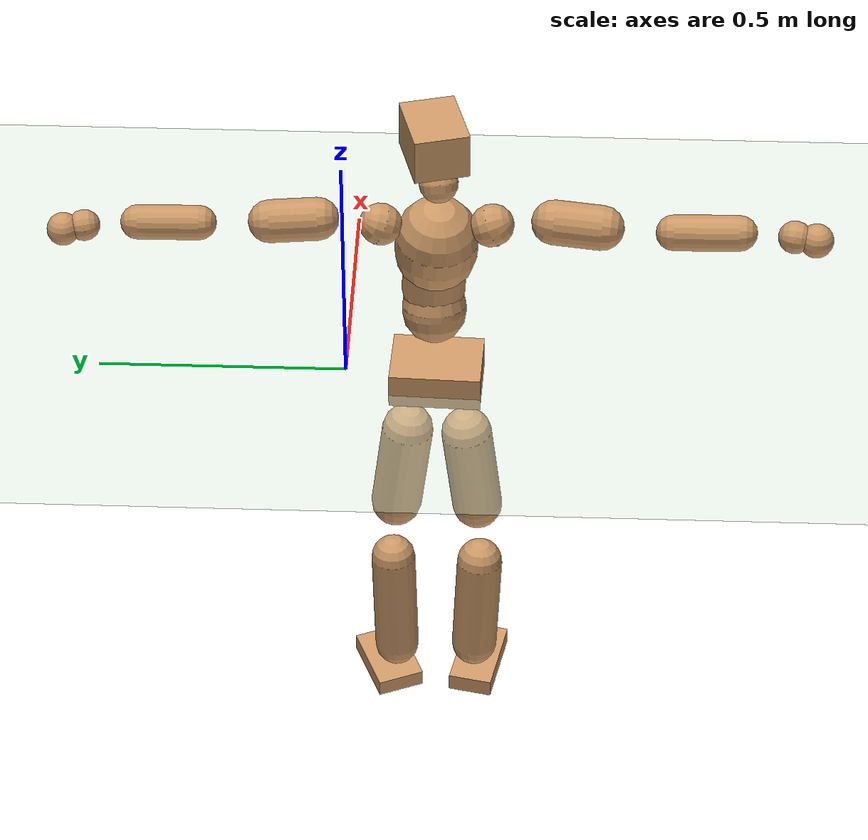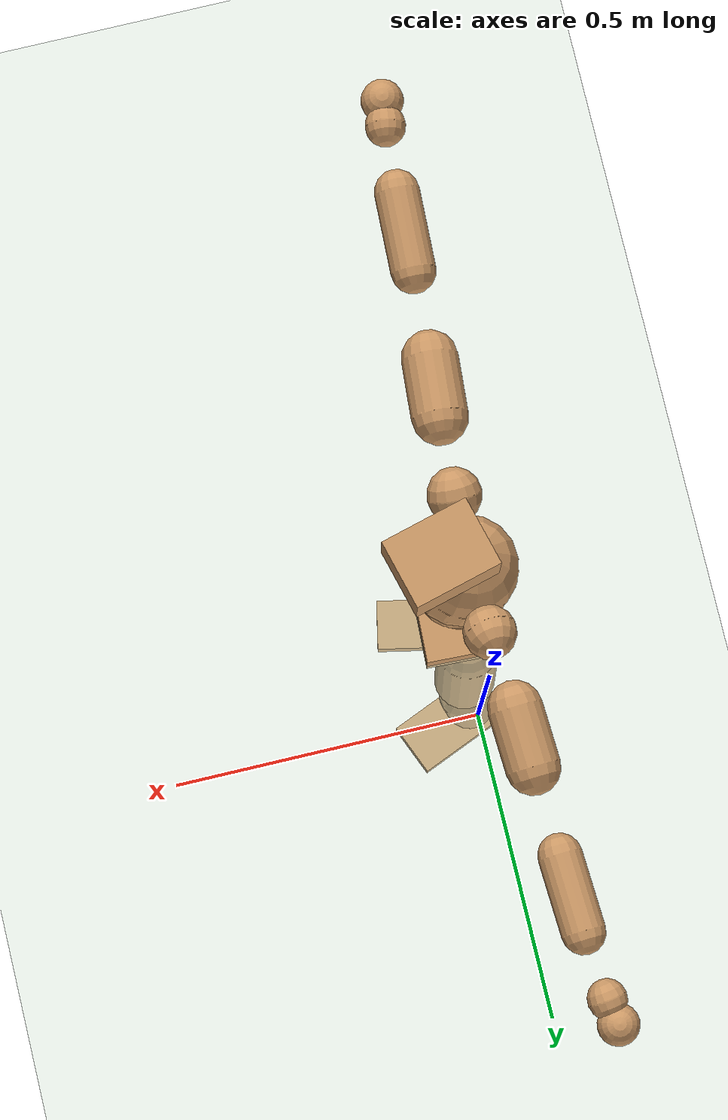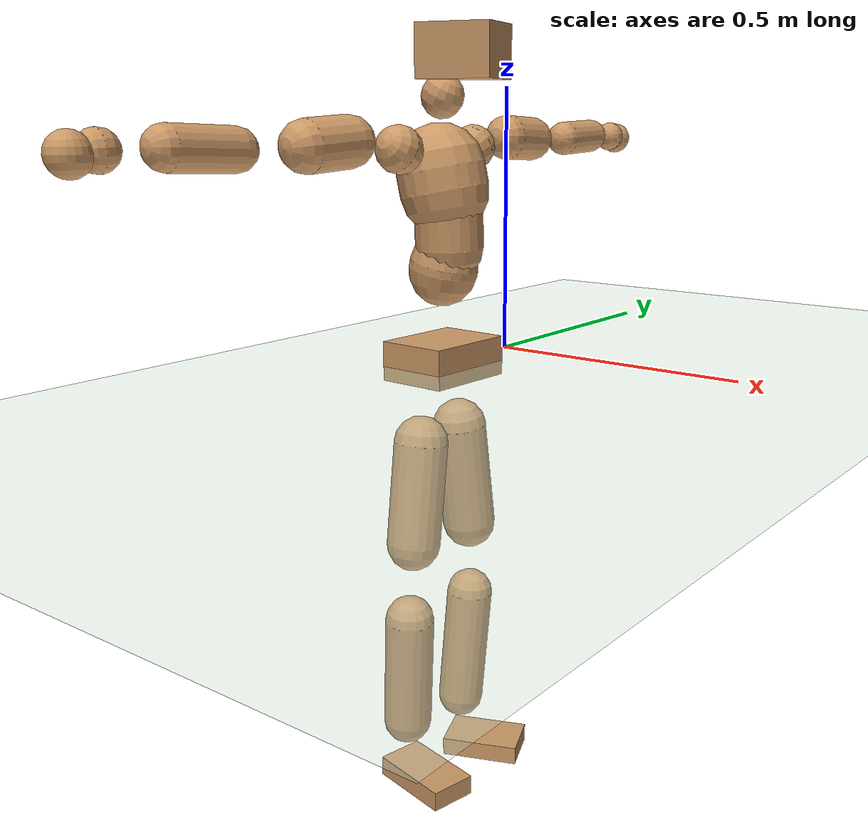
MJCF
<mujoco model="humanoid">
  <compiler coordinate="local" angle="radian"/>
  <default>
    <joint damping="0.0" armature="0.01" stiffness="0.0" limited="true"/>
    <geom conaffinity="1" condim="3" contype="7" margin="0.001" rgba="0.8 0.6 .4 1"/>
  </default>
  <asset>
    <texture type="skybox" builtin="gradient" rgb1=".4 .5 .6" rgb2="0 0 0" width="100" height="100"/>
    <texture builtin="flat" height="1278" mark="cross" markrgb="1 1 1" name="texgeom" random="0.01" rgb1="0.8 0.6 0.4" rgb2="0.8 0.6 0.4" type="cube" width="127"/>
    <texture builtin="checker" height="100" name="texplane" rgb1="0 0 0" rgb2="0.8 0.8 0.8" type="2d" width="100"/>
    <material name="MatPlane" reflectance="0.5" shininess="1" specular="1" texrepeat="60 60" texture="texplane"/>
    <material name="geom" texture="texgeom" texuniform="true"/>
  </asset>
  <worldbody>
    <light cutoff="100" diffuse="1 1 1" dir="-0 0 -1.3" directional="true" exponent="1" pos="0 0 1.3" specular=".1 .1 .1"/>
    <geom conaffinity="1" condim="3" name="floor" pos="0 0 0" rgba="0.8 0.9 0.8 1" size="100 100 .2" type="plane" material="MatPlane"/>
    <body name="Pelvis" pos="-0 -0.185 0.016">
      <freejoint name="Pelvis"/>
      <geom type="box" contype="1" conaffinity="1" density="5359.374324" pos="-0.0102 0.0004 -0.0076" size="0.0683 0.0918 0.0369" quat="0.9998 0.0000 0.0000 -0.0201" name="Pelvis"/>
      <body name="L_Hip" pos="-0.0202 0.0496 -0.0716">
        <joint name="L_Hip_x" type="hinge" pos="0 0 0" axis="1 0 0" stiffness="1600" damping="160" armature="0.02" range="-180.0000 180.0000"/>
        <joint name="L_Hip_y" type="hinge" pos="0 0 0" axis="0 1 0" stiffness="1600" damping="160" armature="0.02" range="-180.0000 180.0000"/>
        <joint name="L_Hip_z" type="hinge" pos="0 0 0" axis="0 0 1" stiffness="1600" damping="160" armature="0.02" range="-180.0000 180.0000"/>
        <geom type="capsule" contype="1" conaffinity="1" density="2040.816327" size="0.0522" fromto="0.0022 0.0098 -0.0815 0.0078 0.0346 -0.2886" name="L_Hip"/>
        <body name="L_Knee" pos="0.01 0.0444 -0.3701">
          <joint name="L_Knee_x" type="hinge" pos="0 0 0" axis="1 0 0" stiffness="1600" damping="160" armature="0.02" range="-180.0000 180.0000"/>
          <joint name="L_Knee_y" type="hinge" pos="0 0 0" axis="0 1 0" stiffness="1600" damping="160" armature="0.02" range="-180.0000 180.0000"/>
          <joint name="L_Knee_z" type="hinge" pos="0 0 0" axis="0 0 1" stiffness="1600" damping="160" armature="0.02" range="-180.0000 180.0000"/>
          <geom type="capsule" contype="1" conaffinity="1" density="1234.567901" size="0.0461" fromto="-0.0058 -0.0022 -0.0758 -0.0241 -0.0093 -0.3159" name="L_Knee"/>
          <body name="L_Ankle" pos="-0.0299 -0.0115 -0.3918">
            <joint name="L_Ankle_x" type="hinge" pos="0 0 0" axis="1 0 0" stiffness="1600" damping="160" armature="0.02" range="-180.0000 180.0000"/>
            <joint name="L_Ankle_y" type="hinge" pos="0 0 0" axis="0 1 0" stiffness="1600" damping="160" armature="0.02" range="-180.0000 180.0000"/>
            <joint name="L_Ankle_z" type="hinge" pos="0 0 0" axis="0 0 1" stiffness="1600" damping="160" armature="0.02" range="-180.0000 180.0000"/>
            <geom type="box" contype="1" conaffinity="1" density="999.999984" pos="0.0548 0.0227 -0.0275" size="0.0778 0.0499 0.0181" quat="0.9808 0.0000 0.0000 0.1952" name="L_Ankle"/>
            <body name="L_Toe" pos="0.1096 0.0454 -0.0549">
              <joint name="L_Toe_x" type="hinge" pos="0 0 0" axis="1 0 0" stiffness="1000" damping="100" armature="0.02" range="-180.0000 180.0000"/>
              <joint name="L_Toe_y" type="hinge" pos="0 0 0" axis="0 1 0" stiffness="1000" damping="100" armature="0.02" range="-180.0000 180.0000"/>
              <joint name="L_Toe_z" type="hinge" pos="0 0 0" axis="0 0 1" stiffness="1000" damping="100" armature="0.02" range="-180.0000 180.0000"/>
              <geom type="box" contype="1" conaffinity="1" density="7356349.123678" pos="0.0000 0.0000 0.0282" size="0.001 0.0024 0.0009" quat="0.9799 0.0000 0.0000 0.1996" name="L_Toe"/>
            </body>
          </body>
        </body>
      </body>
      <body name="R_Hip" pos="-0.0161 -0.0511 -0.0802">
        <joint name="R_Hip_x" type="hinge" pos="0 0 0" axis="1 0 0" stiffness="1600" damping="160" armature="0.02" range="-180.0000 180.0000"/>
        <joint name="R_Hip_y" type="hinge" pos="0 0 0" axis="0 1 0" stiffness="1600" damping="160" armature="0.02" range="-180.0000 180.0000"/>
        <joint name="R_Hip_z" type="hinge" pos="0 0 0" axis="0 0 1" stiffness="1600" damping="160" armature="0.02" range="-180.0000 180.0000"/>
        <geom type="capsule" contype="1" conaffinity="1" density="2040.816327" size="0.0515" fromto="-0.0006 -0.0098 -0.0809 -0.0019 -0.0338 -0.2776" name="R_Hip"/>
        <body name="R_Knee" pos="-0.0025 -0.0436 -0.3584">
          <joint name="R_Knee_x" type="hinge" pos="0 0 0" axis="1 0 0" stiffness="1600" damping="160" armature="0.02" range="-180.0000 180.0000"/>
          <joint name="R_Knee_y" type="hinge" pos="0 0 0" axis="0 1 0" stiffness="1600" damping="160" armature="0.02" range="-180.0000 180.0000"/>
          <joint name="R_Knee_z" type="hinge" pos="0 0 0" axis="0 0 1" stiffness="1600" damping="160" armature="0.02" range="-180.0000 180.0000"/>
          <geom type="capsule" contype="1" conaffinity="1" density="1234.567901" size="0.0475" fromto="-0.0058 0.0032 -0.0772 -0.0229 0.0125 -0.3042" name="R_Knee"/>
          <body name="R_Ankle" pos="-0.0287 0.0157 -0.3814">
            <joint name="R_Ankle_x" type="hinge" pos="0 0 0" axis="1 0 0" stiffness="1600" damping="160" armature="0.02" range="-180.0000 180.0000"/>
            <joint name="R_Ankle_y" type="hinge" pos="0 0 0" axis="0 1 0" stiffness="1600" damping="160" armature="0.02" range="-180.0000 180.0000"/>
            <joint name="R_Ankle_z" type="hinge" pos="0 0 0" axis="0 0 1" stiffness="1600" damping="160" armature="0.02" range="-180.0000 180.0000"/>
            <geom type="box" contype="1" conaffinity="1" density="1000.000022" pos="0.0596 -0.0122 -0.0281" size="0.0849 0.0459 0.0194" quat="0.9949 0.0000 0.0000 -0.1008" name="R_Ankle"/>
            <body name="R_Toe" pos="0.1193 -0.0244 -0.0561">
              <joint name="R_Toe_x" type="hinge" pos="0 0 0" axis="1 0 0" stiffness="1000" damping="100" armature="0.02" range="-180.0000 180.0000"/>
              <joint name="R_Toe_y" type="hinge" pos="0 0 0" axis="0 1 0" stiffness="1000" damping="100" armature="0.02" range="-180.0000 180.0000"/>
              <joint name="R_Toe_z" type="hinge" pos="0 0 0" axis="0 0 1" stiffness="1000" damping="100" armature="0.02" range="-180.0000 180.0000"/>
              <geom type="box" contype="1" conaffinity="1" density="8584885.096933" pos="0.0000 0.0000 0.0295" size="0.0009 0.0023 0.001" quat="0.9958 0.0000 0.0000 -0.0913" name="R_Toe"/>
            </body>
          </body>
        </body>
      </body>
      <body name="Torso" pos="-0.0249 0.004 0.1062">
        <joint name="Torso_x" type="hinge" pos="0 0 0" axis="1 0 0" stiffness="2000" damping="200" armature="0.02" range="-180.0000 180.0000"/>
        <joint name="Torso_y" type="hinge" pos="0 0 0" axis="0 1 0" stiffness="2000" damping="200" armature="0.02" range="-180.0000 180.0000"/>
        <joint name="Torso_z" type="hinge" pos="0 0 0" axis="0 0 1" stiffness="2000" damping="200" armature="0.02" range="-180.0000 180.0000"/>
        <geom type="capsule" contype="1" conaffinity="1" density="2040.816327" size="0.0638" fromto="0.0138 0.0016 0.0623 0.0107 0.0012 0.0481" name="Torso"/>
        <body name="Spine" pos="0.0245 0.0028 0.1104">
          <joint name="Spine_x" type="hinge" pos="0 0 0" axis="1 0 0" stiffness="2000" damping="200" armature="0.02" range="-180.0000 180.0000"/>
          <joint name="Spine_y" type="hinge" pos="0 0 0" axis="0 1 0" stiffness="2000" damping="200" armature="0.02" range="-180.0000 180.0000"/>
          <joint name="Spine_z" type="hinge" pos="0 0 0" axis="0 0 1" stiffness="2000" damping="200" armature="0.02" range="-180.0000 180.0000"/>
          <geom type="capsule" contype="1" conaffinity="1" density="2040.816327" size="0.0627" fromto="0.0005 -0.0030 0.0626 -0.0002 0.0009 -0.0187" name="Spine"/>
          <body name="Chest" pos="0.0004 -0.0021 0.0439">
            <joint name="Chest_x" type="hinge" pos="0 0 0" axis="1 0 0" stiffness="2000" damping="200" armature="0.02" range="-180.0000 180.0000"/>
            <joint name="Chest_y" type="hinge" pos="0 0 0" axis="0 1 0" stiffness="2000" damping="200" armature="0.02" range="-180.0000 180.0000"/>
            <joint name="Chest_z" type="hinge" pos="0 0 0" axis="0 0 1" stiffness="2000" damping="200" armature="0.02" range="-180.0000 180.0000"/>
            <geom type="capsule" contype="1" conaffinity="1" density="2040.816327" size="0.0812" fromto="-0.0145 -0.0049 0.0798 -0.0072 -0.0024 0.0396" name="Chest"/>
            <body name="Neck" pos="-0.026 -0.0113 0.168">
              <joint name="Neck_x" type="hinge" pos="0 0 0" axis="1 0 0" stiffness="1000" damping="100" armature="0.02" range="-180.0000 180.0000"/>
              <joint name="Neck_y" type="hinge" pos="0 0 0" axis="0 1 0" stiffness="1000" damping="100" armature="0.02" range="-180.0000 180.0000"/>
              <joint name="Neck_z" type="hinge" pos="0 0 0" axis="0 0 1" stiffness="1000" damping="100" armature="0.02" range="-180.0000 180.0000"/>
              <geom type="capsule" contype="1" conaffinity="1" density="1000" size="0.0385" fromto="0.0184 0.0042 0.0356 0.0193 0.0044 0.0374" name="Neck"/>
              <body name="Head" pos="0.0378 0.0086 0.073">
                <joint name="Head_x" type="hinge" pos="0 0 0" axis="1 0 0" stiffness="1000" damping="100" armature="0.02" range="-180.0000 180.0000"/>
                <joint name="Head_y" type="hinge" pos="0 0 0" axis="0 1 0" stiffness="1000" damping="100" armature="0.02" range="-180.0000 180.0000"/>
                <joint name="Head_z" type="hinge" pos="0 0 0" axis="0 0 1" stiffness="1000" damping="100" armature="0.02" range="-180.0000 180.0000"/>
                <geom type="box" contype="1" conaffinity="1" density="2250.000021" pos="0.0199 0.0053 0.0375" size="0.069 0.0544 0.0463" quat="0.9915 0.0000 0.0000 0.1299" name="Head"/>
              </body>
            </body>
            <body name="L_Thorax" pos="-0.019 0.055 0.0949">
              <joint name="L_Thorax_x" type="hinge" pos="0 0 0" axis="1 0 0" stiffness="1000" damping="100" armature="0.02" range="-180.0000 180.0000"/>
              <joint name="L_Thorax_y" type="hinge" pos="0 0 0" axis="0 1 0" stiffness="1000" damping="100" armature="0.02" range="-180.0000 180.0000"/>
              <joint name="L_Thorax_z" type="hinge" pos="0 0 0" axis="0 0 1" stiffness="1000" damping="100" armature="0.02" range="-180.0000 180.0000"/>
              <geom type="capsule" contype="1" conaffinity="1" density="1000" size="0.0412" fromto="-0.0042 0.0484 0.0189 -0.0044 0.0502 0.0197" name="L_Thorax"/>
              <body name="L_Shoulder" pos="-0.0086 0.0986 0.0386">
                <joint name="L_Shoulder_x" type="hinge" pos="0 0 0" axis="1 0 0" stiffness="1000" damping="100" armature="0.02" range="-720.0000 720.0000"/>
                <joint name="L_Shoulder_y" type="hinge" pos="0 0 0" axis="0 1 0" stiffness="1000" damping="100" armature="0.02" range="-720.0000 720.0000"/>
                <joint name="L_Shoulder_z" type="hinge" pos="0 0 0" axis="0 0 1" stiffness="1000" damping="100" armature="0.02" range="-720.0000 720.0000"/>
                <geom type="capsule" contype="1" conaffinity="1" density="1000" size="0.0421" fromto="-0.0041 0.0719 -0.0035 -0.0094 0.1646 -0.0079" name="L_Shoulder"/>
                <body name="L_Elbow" pos="-0.0136 0.2366 -0.0114">
                  <joint name="L_Elbow_x" type="hinge" pos="0 0 0" axis="1 0 0" stiffness="1000" damping="100" armature="0.02" range="-720.0000 720.0000"/>
                  <joint name="L_Elbow_y" type="hinge" pos="0 0 0" axis="0 1 0" stiffness="1000" damping="100" armature="0.02" range="-720.0000 720.0000"/>
                  <joint name="L_Elbow_z" type="hinge" pos="0 0 0" axis="0 0 1" stiffness="1000" damping="100" armature="0.02" range="-720.0000 720.0000"/>
                  <geom type="capsule" contype="1" conaffinity="1" density="1000" size="0.0338" fromto="-0.0033 0.0637 0.0019 -0.0096 0.1818 0.0053" name="L_Elbow"/>
                  <body name="L_Wrist" pos="-0.0129 0.2454 0.0072">
                    <joint name="L_Wrist_x" type="hinge" pos="0 0 0" axis="1 0 0" stiffness="600" damping="60" armature="0.02" range="-180.0000 180.0000"/>
                    <joint name="L_Wrist_y" type="hinge" pos="0 0 0" axis="0 1 0" stiffness="600" damping="60" armature="0.02" range="-180.0000 180.0000"/>
                    <joint name="L_Wrist_z" type="hinge" pos="0 0 0" axis="0 0 1" stiffness="600" damping="60" armature="0.02" range="-180.0000 180.0000"/>
                    <geom type="capsule" contype="1" conaffinity="1" density="1000" size="0.0302" fromto="-0.0072 0.0386 -0.0045 -0.0075 0.0406 -0.0047" name="L_Wrist"/>
                    <body name="L_Hand" pos="-0.0147 0.0792 -0.0091">
                      <joint name="L_Hand_x" type="hinge" pos="0 0 0" axis="1 0 0" stiffness="600" damping="60" armature="0.02" range="-180.0000 180.0000"/>
                      <joint name="L_Hand_y" type="hinge" pos="0 0 0" axis="0 1 0" stiffness="600" damping="60" armature="0.02" range="-180.0000 180.0000"/>
                      <joint name="L_Hand_z" type="hinge" pos="0 0 0" axis="0 0 1" stiffness="600" damping="60" armature="0.02" range="-180.0000 180.0000"/>
                      <geom type="sphere" contype="1" conaffinity="1" density="1000" size="0.0321" pos="0.0000 0.0000 0.0000" name="L_Hand"/>
                    </body>
                  </body>
                </body>
              </body>
            </body>
            <body name="R_Thorax" pos="-0.0201 -0.0657 0.0953">
              <joint name="R_Thorax_x" type="hinge" pos="0 0 0" axis="1 0 0" stiffness="1000" damping="100" armature="0.02" range="-180.0000 180.0000"/>
              <joint name="R_Thorax_y" type="hinge" pos="0 0 0" axis="0 1 0" stiffness="1000" damping="100" armature="0.02" range="-180.0000 180.0000"/>
              <joint name="R_Thorax_z" type="hinge" pos="0 0 0" axis="0 0 1" stiffness="1000" damping="100" armature="0.02" range="-180.0000 180.0000"/>
              <geom type="capsule" contype="1" conaffinity="1" density="1000" size="0.0423" fromto="-0.0006 -0.0448 0.0193 -0.0006 -0.0466 0.0201" name="R_Thorax"/>
              <body name="R_Shoulder" pos="-0.0011 -0.0914 0.0395">
                <joint name="R_Shoulder_x" type="hinge" pos="0 0 0" axis="1 0 0" stiffness="1000" damping="100" armature="0.02" range="-720.0000 720.0000"/>
                <joint name="R_Shoulder_y" type="hinge" pos="0 0 0" axis="0 1 0" stiffness="1000" damping="100" armature="0.02" range="-720.0000 720.0000"/>
                <joint name="R_Shoulder_z" type="hinge" pos="0 0 0" axis="0 0 1" stiffness="1000" damping="100" armature="0.02" range="-720.0000 720.0000"/>
                <geom type="capsule" contype="1" conaffinity="1" density="1000" size="0.044" fromto="-0.0054 -0.0737 -0.0045 -0.0122 -0.1661 -0.0102" name="R_Shoulder"/>
                <body name="R_Elbow" pos="-0.0177 -0.2398 -0.0147">
                  <joint name="R_Elbow_x" type="hinge" pos="0 0 0" axis="1 0 0" stiffness="1000" damping="100" armature="0.02" range="-720.0000 720.0000"/>
                  <joint name="R_Elbow_y" type="hinge" pos="0 0 0" axis="0 1 0" stiffness="1000" damping="100" armature="0.02" range="-720.0000 720.0000"/>
                  <joint name="R_Elbow_z" type="hinge" pos="0 0 0" axis="0 0 1" stiffness="1000" damping="100" armature="0.02" range="-720.0000 720.0000"/>
                  <geom type="capsule" contype="1" conaffinity="1" density="1000" size="0.0351" fromto="-0.0022 -0.0650 0.0027 -0.0064 -0.1905 0.0080" name="R_Elbow"/>
                  <body name="R_Wrist" pos="-0.0086 -0.2555 0.0108">
                    <joint name="R_Wrist_x" type="hinge" pos="0 0 0" axis="1 0 0" stiffness="600" damping="60" armature="0.02" range="-180.0000 180.0000"/>
                    <joint name="R_Wrist_y" type="hinge" pos="0 0 0" axis="0 1 0" stiffness="600" damping="60" armature="0.02" range="-180.0000 180.0000"/>
                    <joint name="R_Wrist_z" type="hinge" pos="0 0 0" axis="0 0 1" stiffness="600" damping="60" armature="0.02" range="-180.0000 180.0000"/>
                    <geom type="capsule" contype="1" conaffinity="1" density="1000" size="0.0316" fromto="-0.0047 -0.0402 -0.0038 -0.0050 -0.0422 -0.0039" name="R_Wrist"/>
                    <body name="R_Hand" pos="-0.0097 -0.0824 -0.0077">
                      <joint name="R_Hand_x" type="hinge" pos="0 0 0" axis="1 0 0" stiffness="600" damping="60" armature="0.02" range="-180.0000 180.0000"/>
                      <joint name="R_Hand_y" type="hinge" pos="0 0 0" axis="0 1 0" stiffness="600" damping="60" armature="0.02" range="-180.0000 180.0000"/>
                      <joint name="R_Hand_z" type="hinge" pos="0 0 0" axis="0 0 1" stiffness="600" damping="60" armature="0.02" range="-180.0000 180.0000"/>
                      <geom type="sphere" contype="1" conaffinity="1" density="1000" size="0.0333" pos="0.0000 0.0000 0.0000" name="R_Hand"/>
                    </body>
                  </body>
                </body>
              </body>
            </body>
          </body>
        </body>
      </body>
    </body>
  </worldbody>
  <actuator>
    <motor name="L_Hip_x" joint="L_Hip_x" gear="500"/>
    <motor name="L_Hip_y" joint="L_Hip_y" gear="500"/>
    <motor name="L_Hip_z" joint="L_Hip_z" gear="500"/>
    <motor name="L_Knee_x" joint="L_Knee_x" gear="500"/>
    <motor name="L_Knee_y" joint="L_Knee_y" gear="500"/>
    <motor name="L_Knee_z" joint="L_Knee_z" gear="500"/>
    <motor name="L_Ankle_x" joint="L_Ankle_x" gear="500"/>
    <motor name="L_Ankle_y" joint="L_Ankle_y" gear="500"/>
    <motor name="L_Ankle_z" joint="L_Ankle_z" gear="500"/>
    <motor name="L_Toe_x" joint="L_Toe_x" gear="500"/>
    <motor name="L_Toe_y" joint="L_Toe_y" gear="500"/>
    <motor name="L_Toe_z" joint="L_Toe_z" gear="500"/>
    <motor name="R_Hip_x" joint="R_Hip_x" gear="500"/>
    <motor name="R_Hip_y" joint="R_Hip_y" gear="500"/>
    <motor name="R_Hip_z" joint="R_Hip_z" gear="500"/>
    <motor name="R_Knee_x" joint="R_Knee_x" gear="500"/>
    <motor name="R_Knee_y" joint="R_Knee_y" gear="500"/>
    <motor name="R_Knee_z" joint="R_Knee_z" gear="500"/>
    <motor name="R_Ankle_x" joint="R_Ankle_x" gear="500"/>
    <motor name="R_Ankle_y" joint="R_Ankle_y" gear="500"/>
    <motor name="R_Ankle_z" joint="R_Ankle_z" gear="500"/>
    <motor name="R_Toe_x" joint="R_Toe_x" gear="500"/>
    <motor name="R_Toe_y" joint="R_Toe_y" gear="500"/>
    <motor name="R_Toe_z" joint="R_Toe_z" gear="500"/>
    <motor name="Torso_x" joint="Torso_x" gear="500"/>
    <motor name="Torso_y" joint="Torso_y" gear="500"/>
    <motor name="Torso_z" joint="Torso_z" gear="500"/>
    <motor name="Spine_x" joint="Spine_x" gear="500"/>
    <motor name="Spine_y" joint="Spine_y" gear="500"/>
    <motor name="Spine_z" joint="Spine_z" gear="500"/>
    <motor name="Chest_x" joint="Chest_x" gear="500"/>
    <motor name="Chest_y" joint="Chest_y" gear="500"/>
    <motor name="Chest_z" joint="Chest_z" gear="500"/>
    <motor name="Neck_x" joint="Neck_x" gear="500"/>
    <motor name="Neck_y" joint="Neck_y" gear="500"/>
    <motor name="Neck_z" joint="Neck_z" gear="500"/>
    <motor name="Head_x" joint="Head_x" gear="500"/>
    <motor name="Head_y" joint="Head_y" gear="500"/>
    <motor name="Head_z" joint="Head_z" gear="500"/>
    <motor name="L_Thorax_x" joint="L_Thorax_x" gear="500"/>
    <motor name="L_Thorax_y" joint="L_Thorax_y" gear="500"/>
    <motor name="L_Thorax_z" joint="L_Thorax_z" gear="500"/>
    <motor name="L_Shoulder_x" joint="L_Shoulder_x" gear="500"/>
    <motor name="L_Shoulder_y" joint="L_Shoulder_y" gear="500"/>
    <motor name="L_Shoulder_z" joint="L_Shoulder_z" gear="500"/>
    <motor name="L_Elbow_x" joint="L_Elbow_x" gear="500"/>
    <motor name="L_Elbow_y" joint="L_Elbow_y" gear="500"/>
    <motor name="L_Elbow_z" joint="L_Elbow_z" gear="500"/>
    <motor name="L_Wrist_x" joint="L_Wrist_x" gear="500"/>
    <motor name="L_Wrist_y" joint="L_Wrist_y" gear="500"/>
    <motor name="L_Wrist_z" joint="L_Wrist_z" gear="500"/>
    <motor name="L_Hand_x" joint="L_Hand_x" gear="500"/>
    <motor name="L_Hand_y" joint="L_Hand_y" gear="500"/>
    <motor name="L_Hand_z" joint="L_Hand_z" gear="500"/>
    <motor name="R_Thorax_x" joint="R_Thorax_x" gear="500"/>
    <motor name="R_Thorax_y" joint="R_Thorax_y" gear="500"/>
    <motor name="R_Thorax_z" joint="R_Thorax_z" gear="500"/>
    <motor name="R_Shoulder_x" joint="R_Shoulder_x" gear="500"/>
    <motor name="R_Shoulder_y" joint="R_Shoulder_y" gear="500"/>
    <motor name="R_Shoulder_z" joint="R_Shoulder_z" gear="500"/>
    <motor name="R_Elbow_x" joint="R_Elbow_x" gear="500"/>
    <motor name="R_Elbow_y" joint="R_Elbow_y" gear="500"/>
    <motor name="R_Elbow_z" joint="R_Elbow_z" gear="500"/>
    <motor name="R_Wrist_x" joint="R_Wrist_x" gear="500"/>
    <motor name="R_Wrist_y" joint="R_Wrist_y" gear="500"/>
    <motor name="R_Wrist_z" joint="R_Wrist_z" gear="500"/>
    <motor name="R_Hand_x" joint="R_Hand_x" gear="500"/>
    <motor name="R_Hand_y" joint="R_Hand_y" gear="500"/>
    <motor name="R_Hand_z" joint="R_Hand_z" gear="500"/>
  </actuator>
  <contact>
    <exclude body1="Torso" body2="Chest"/>
    <exclude body1="Head" body2="Chest"/>
    <exclude body1="R_Knee" body2="R_Toe"/>
    <exclude body1="R_Knee" body2="L_Ankle"/>
    <exclude body1="R_Knee" body2="L_Toe"/>
    <exclude body1="L_Knee" body2="L_Toe"/>
    <exclude body1="L_Knee" body2="R_Ankle"/>
    <exclude body1="L_Knee" body2="R_Toe"/>
    <exclude body1="L_Shoulder" body2="Chest"/>
    <exclude body1="R_Shoulder" body2="Chest"/>
  </contact>
  <sensor/>
  <size njmax="700" nconmax="700"/>
</mujoco>
